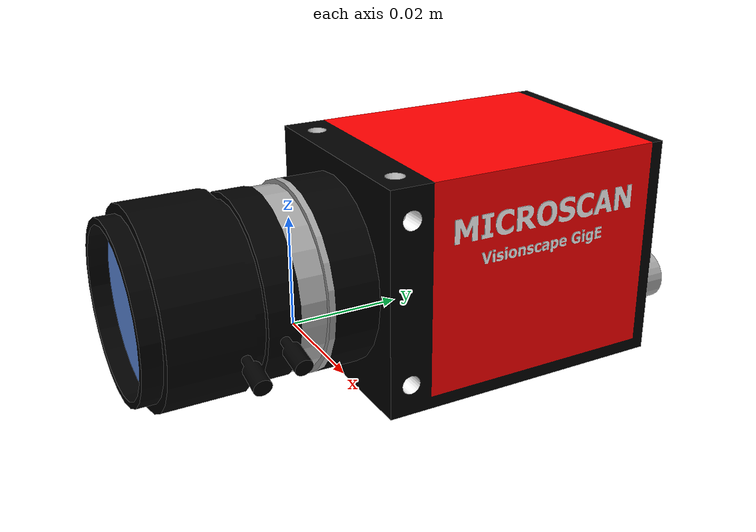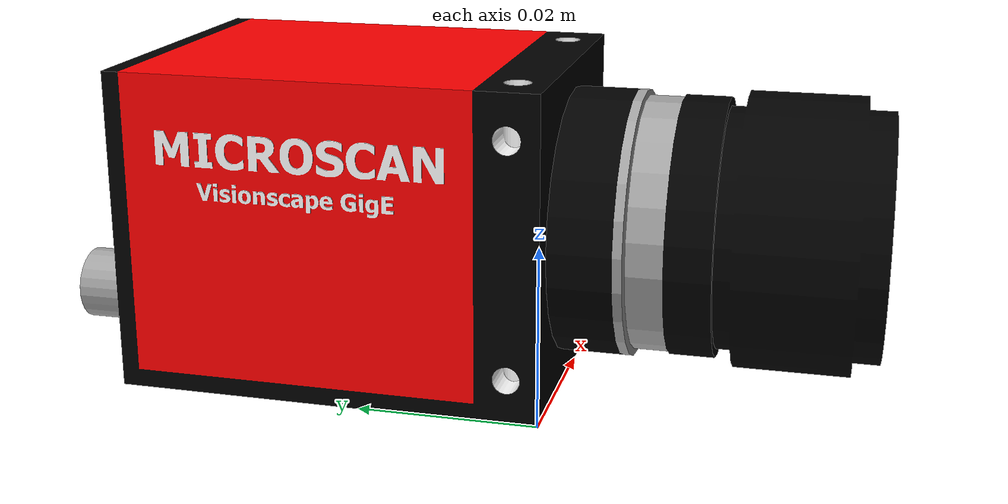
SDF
<?xml version="1.0" ?>
<sdf version="1.5">
  <model name="camera">
    <link name="camera_link">
      <collision name="collision">
        <geometry>
            <mesh>
              <uri>model://motoman_camera_test/meshes/new_model.dae</uri>
           </mesh>
       </geometry>
     </collision>
     <visual name="visual">
        <geometry>
            <mesh>
              <uri>model://motoman_camera_test/meshes/new_model.dae</uri>
           </mesh>
      </geometry>
    </visual>
     <sensor name="motoman_camera" type="camera">
        <pose>0 0 0 -1.57 0 -1.57</pose>
        <always_on>true</always_on>
        <update_rate>30.0</update_rate>
        <camera>
          <horizontal_fov>1.110</horizontal_fov>
          <image>
            <width>4096</width>
            <height>2160</height>
          </image>
          <clip>
            <near>0.1</near>
            <far>100</far>
          </clip>
          <noise>
            <type>gaussian</type>
            <mean>0.0</mean>
            <stddev>0.3</stddev>
          </noise>
       </camera>

       <plugin name="camera_controller" filename="libgazebo_ros_camera.so">
        <alwaysOn>true</alwaysOn>
        <updateRate>30.0</updateRate>
        <cameraName>motoman_camera</cameraName>
        <imageTopicName>image_raw</imageTopicName>
        <cameraInfoTopicName>camera_info</cameraInfoTopicName>
        <frameName>camera_link</frameName>
        <hackBaseline>0.07</hackBaseline>
        <distortionK1>0.0</distortionK1>
        <distortionK2>0.0</distortionK2>
        <distortionK3>0.0</distortionK3>
        <distortionT1>0.0</distortionT1>
        <distortionT2>0.0</distortionT2>
      </plugin>
     </sensor>
    </link>
  </model>
</sdf>
